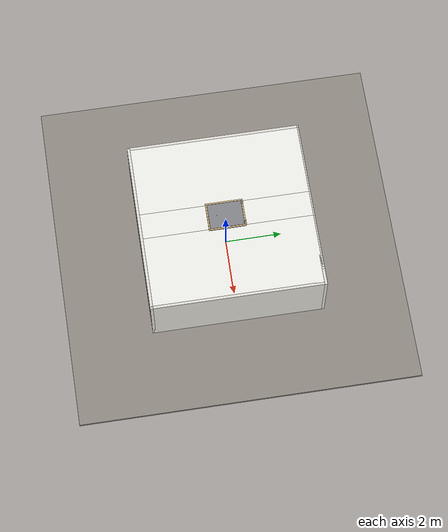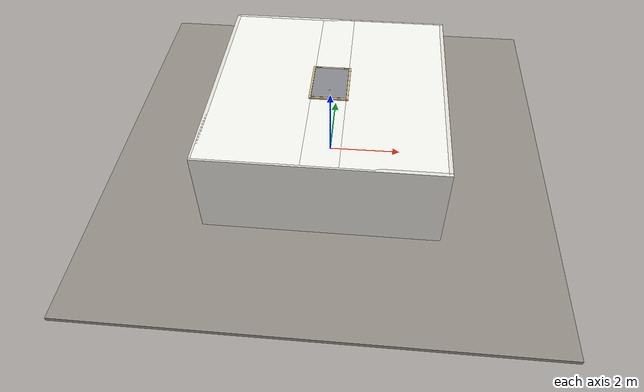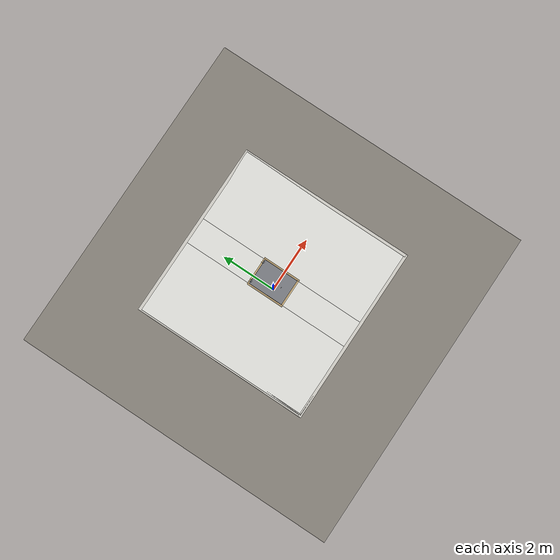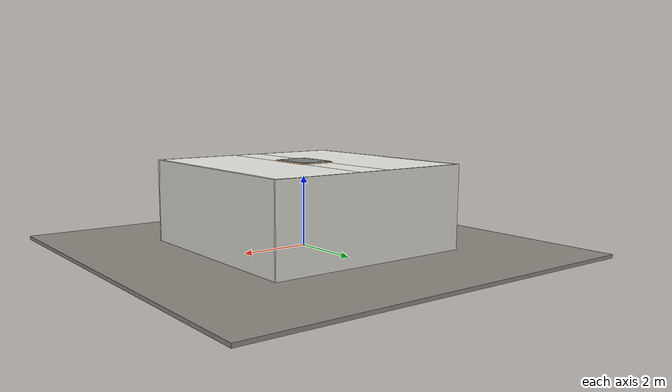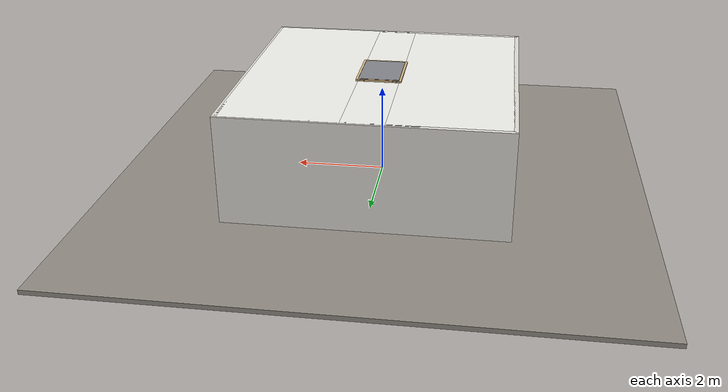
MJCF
<?xml version="1.0" ?>
<mujoco model="db0017_hatch_ceiling_full">
  <compiler angle="radian" meshdir="../../hardware" texturedir="../../textures" autolimits="true" inertiafromgeom="false"/>
  <option timestep="0.002" integrator="implicitfast" cone="elliptic" impratio="10" noslip_iterations="3">
    <flag multiccd="enable"/>
  </option>
  <size memory="16M"/>
  <default>
    <geom condim="4" solref="0.005 1" solimp="0.95 0.99 0.001"/>
    <joint solreflimit="0.005 1" solimplimit="0.95 0.99 0.001"/>
    <tendon solreflimit="0.005 1"/>
    <equality solref="0.002 1"/>
  </default>
  <visual>
    <headlight ambient="0.4 0.4 0.4" diffuse="0.7 0.7 0.7" specular="0.2 0.2 0.2"/>
    <quality shadowsize="4096"/>
    <map znear="0.01" zfar="60"/>
  </visual>
  <asset>
    <material name="mat_floor" rgba="0.55 0.53 0.5 1" specular="0.2" shininess="0.15" reflectance="0"/>
    <material name="mat_wall" rgba="0.78 0.76 0.7 1" specular="0.2" shininess="0.1" reflectance="0"/>
    <material name="mat_ceiling" rgba="0.92 0.92 0.9 1" specular="0.2" shininess="0.1" reflectance="0"/>
    <material name="mat_room_wall" rgba="0.86 0.85 0.82 1" specular="0.2" shininess="0.1" reflectance="0"/>
    <material name="mat_frame" rgba="0.82 0.7 0.5 1" specular="0.2" shininess="0.45" reflectance="0"/>
    <material name="mat_leaf" rgba="0.5 0.51 0.53 1" specular="0.23" shininess="0.43" reflectance="0.02"/>
    <material name="mat_hinge" rgba="0.65 0.66 0.68 1" specular="0.74" shininess="0.5" reflectance="0.36"/>
    <material name="mat_op_steel_galvanized" rgba="0.65 0.66 0.68 1" specular="0.74" shininess="0.5" reflectance="0.36"/>
    <texture name="skybox" type="skybox" builtin="gradient" rgb1="0.6 0.7 0.85" rgb2="0.9 0.92 0.95" width="256" height="256"/>
  </asset>
  <worldbody>
    <light name="sun" pos="1.5 -2.5 4" dir="-0.3 0.5 -0.8" directional="true" diffuse="0.8 0.8 0.8" specular="0.3 0.3 0.3" castshadow="true"/>
    <light name="fill" pos="-1.5 2.5 3" dir="0.3 -0.5 -0.7" directional="true" diffuse="0.35 0.35 0.4" castshadow="false"/>
    <camera name="robot_view" pos="0 -1.875 3.53" xyaxes="1 0 0 0 0.26963 0.962964" fovy="52"/>
    <camera name="far_view" pos="0 1.875 3.53" xyaxes="-1 0 0 0 -0.26963 0.962964" fovy="52"/>
    <camera name="iso" pos="1.425 -1.575 3.83" xyaxes="0.741536 0.670913 0 -0.242917 0.268487 0.932151" fovy="46"/>
    <camera name="detail_handle" pos="0.35 -0.8125 1.581" xyaxes="0.843661 0.536875 0 0.426006 -0.669439 0.608581" fovy="38"/>
    <geom name="floor" type="box" size="6 6 0.05" pos="0 0 -0.05" material="mat_floor" group="0" contype="1" conaffinity="1" friction="0.8 0.005 0.0001" density="2400"/>
    <geom name="ceil_a" type="box" size="1.2725 3 0.05" pos="-1.7275 0 2.35" material="mat_ceiling" group="0" contype="1" conaffinity="1" friction="0.6 0.005 0.0001" density="600"/>
    <geom name="ceil_b" type="box" size="1.2725 3 0.05" pos="1.7275 0 2.35" material="mat_ceiling" group="0" contype="1" conaffinity="1" friction="0.6 0.005 0.0001" density="600"/>
    <geom name="ceil_c" type="box" size="0.455 1.1975 0.05" pos="0 -1.8025 2.35" material="mat_ceiling" group="0" contype="1" conaffinity="1" friction="0.6 0.005 0.0001" density="600"/>
    <geom name="ceil_d" type="box" size="0.455 1.1975 0.05" pos="0 1.8025 2.35" material="mat_ceiling" group="0" contype="1" conaffinity="1" friction="0.6 0.005 0.0001" density="600"/>
    <geom name="room_wall_l" type="box" size="0.05 3 1.2" pos="-3 0 1.2" material="mat_room_wall" group="0" contype="1" conaffinity="1" friction="0.6 0.005 0.0001" density="800"/>
    <geom name="room_wall_r" type="box" size="0.05 3 1.2" pos="3 0 1.2" material="mat_room_wall" group="0" contype="1" conaffinity="1" friction="0.6 0.005 0.0001" density="800"/>
    <geom name="room_wall_n" type="box" size="3.05 0.05 1.2" pos="0 -3 1.2" material="mat_room_wall" group="0" contype="1" conaffinity="1" friction="0.6 0.005 0.0001" density="800"/>
    <geom name="room_wall_f" type="box" size="3.05 0.05 1.2" pos="0 3 1.2" material="mat_room_wall" group="0" contype="1" conaffinity="1" friction="0.6 0.005 0.0001" density="800"/>
    <geom name="curb_l" type="box" size="0.025 0.655 0.02" pos="-0.48 0 2.42" material="mat_frame" group="0" contype="1" conaffinity="1" friction="0.6 0.005 0.0001" density="7850"/>
    <geom name="curb_r" type="box" size="0.025 0.655 0.02" pos="0.48 0 2.42" material="mat_frame" group="0" contype="1" conaffinity="1" friction="0.6 0.005 0.0001" density="7850"/>
    <geom name="curb_n" type="box" size="0.455 0.025 0.02" pos="0 -0.63 2.42" material="mat_frame" group="0" contype="1" conaffinity="1" friction="0.6 0.005 0.0001" density="7850"/>
    <geom name="curb_f" type="box" size="0.455 0.025 0.02" pos="0 0.63 2.42" material="mat_frame" group="0" contype="1" conaffinity="1" friction="0.6 0.005 0.0001" density="7850"/>
    <geom name="hatch_hinge_0_curb_n" type="cylinder" size="0.01 0.018" pos="-0.404 0.615 2.44" quat="0.707107 0 0.707107 0" material="mat_hinge" group="1" contype="0" conaffinity="0" density="7850"/>
    <geom name="hatch_hinge_0_curb_strap_n" type="box" size="0.018 0.032 0.005" pos="-0.404 0.635 2.43" material="mat_hinge" group="1" contype="0" conaffinity="0" density="7850"/>
    <geom name="hatch_hinge_0_curb_p" type="cylinder" size="0.01 0.018" pos="-0.316 0.615 2.44" quat="0.707107 0 0.707107 0" material="mat_hinge" group="1" contype="0" conaffinity="0" density="7850"/>
    <geom name="hatch_hinge_0_curb_strap_p" type="box" size="0.018 0.032 0.005" pos="-0.316 0.635 2.43" material="mat_hinge" group="1" contype="0" conaffinity="0" density="7850"/>
    <geom name="hatch_hinge_1_curb_n" type="cylinder" size="0.01 0.018" pos="0.316 0.615 2.44" quat="0.707107 0 0.707107 0" material="mat_hinge" group="1" contype="0" conaffinity="0" density="7850"/>
    <geom name="hatch_hinge_1_curb_strap_n" type="box" size="0.018 0.032 0.005" pos="0.316 0.635 2.43" material="mat_hinge" group="1" contype="0" conaffinity="0" density="7850"/>
    <geom name="hatch_hinge_1_curb_p" type="cylinder" size="0.01 0.018" pos="0.404 0.615 2.44" quat="0.707107 0 0.707107 0" material="mat_hinge" group="1" contype="0" conaffinity="0" density="7850"/>
    <geom name="hatch_hinge_1_curb_strap_p" type="box" size="0.018 0.032 0.005" pos="0.404 0.635 2.43" material="mat_hinge" group="1" contype="0" conaffinity="0" density="7850"/>
    <site name="approach_point" pos="0 -1.5 0" quat="1 0 0 0" size="0.05" rgba="0.2 0.9 0.2 0.5" group="4"/>
    <site name="goal_point" pos="0 0 2.9" quat="1 0 0 0" size="0.05" rgba="0.2 0.9 0.2 0.5" group="4"/>
    <site name="door_plane_center" pos="0 0 2.4" quat="1 0 0 0" size="0.02" rgba="0.2 0.9 0.2 0.5" group="4"/>
    <body name="hatch" pos="0 0.605 2.44">
      <inertial pos="0 -0.599805 0.000011" mass="51.8455" quat="0.707107 0.000051 0.000051 -0.707107" diaginertia="3.521827167 6.36616184 9.887649598"/>
      <joint name="hatch_hinge" type="hinge" axis="-1 0 0" pos="0 0.01 0" limited="true" range="0 1.570796" damping="0.64219" frictionloss="3.628867" armature="0.02"/>
      <geom name="hatch_slab" type="box" size="0.45 0.601 0.003" pos="0 -0.605 0" material="mat_leaf" group="0" contype="1" conaffinity="1" friction="0.6 0.005 0.0001" density="1"/>
      <geom name="hatch_hinge_0" type="cylinder" size="0.01 0.028" pos="-0.36 0.01 0" quat="0.707107 0 0.707107 0" material="mat_hinge" group="1" contype="0" conaffinity="0" density="7850"/>
      <geom name="hatch_hinge_0_strap" type="box" size="0.028 0.023 0.003" pos="-0.36 -0.007 0.005" material="mat_hinge" group="1" contype="0" conaffinity="0" density="7850"/>
      <geom name="hatch_hinge_1" type="cylinder" size="0.01 0.028" pos="0.36 0.01 0" quat="0.707107 0 0.707107 0" material="mat_hinge" group="1" contype="0" conaffinity="0" density="7850"/>
      <geom name="hatch_hinge_1_strap" type="box" size="0.028 0.023 0.003" pos="0.36 -0.007 0.005" material="mat_hinge" group="1" contype="0" conaffinity="0" density="7850"/>
      <geom name="ring_recess" type="box" size="0.05 0.05 0.001" pos="0 -0.9075 -0.004" material="mat_op_steel_galvanized" group="1" contype="0" conaffinity="0" density="7800"/>
      <body name="ring" pos="0 -0.9075 -0.003">
        <inertial pos="0 0.019982 -0.002997" mass="0.2225" quat="0.058307 0.998299 0 0" diaginertia="0.000076951 0.000083485 0.000154999"/>
        <joint name="ring_hinge" type="hinge" axis="-1 0 0" limited="true" range="0 1.5708" damping="0.003272" armature="0.0001"/>
        <geom name="ring_geom" type="capsule" size="0.006 0.035" pos="0 0.04 -0.006" quat="0.707107 0 0.707107 0" material="mat_op_steel_galvanized" group="0" contype="1" conaffinity="1" friction="0.6 0.005 0.0001" density="7800"/>
        <geom name="ring_knuckle" type="cylinder" size="0.008 0.022" pos="0 0 0" quat="0.707107 0 0.707107 0" material="mat_op_steel_galvanized" group="1" contype="0" conaffinity="0" density="7800"/>
        <geom name="ring_arm_n" type="capsule" size="0.006 0.02" pos="-0.02 0.02 -0.003" quat="0.707107 -0.707107 0 0" material="mat_op_steel_galvanized" group="1" contype="0" conaffinity="0" density="7800"/>
        <geom name="ring_arm_p" type="capsule" size="0.006 0.02" pos="0.02 0.02 -0.003" quat="0.707107 -0.707107 0 0" material="mat_op_steel_galvanized" group="1" contype="0" conaffinity="0" density="7800"/>
        <site name="grip_ring" pos="0 0.04 -0.006" quat="1 0 0 0" size="0.01" rgba="0.2 0.9 0.2 0.5" group="4"/>
      </body>
    </body>
  </worldbody>
  <sensor>
    <jointpos name="hatch_hinge_pos" joint="hatch_hinge"/>
    <jointvel name="hatch_hinge_vel" joint="hatch_hinge"/>
    <jointpos name="ring_hinge_pos" joint="ring_hinge"/>
    <jointvel name="ring_hinge_vel" joint="ring_hinge"/>
  </sensor>
</mujoco>
